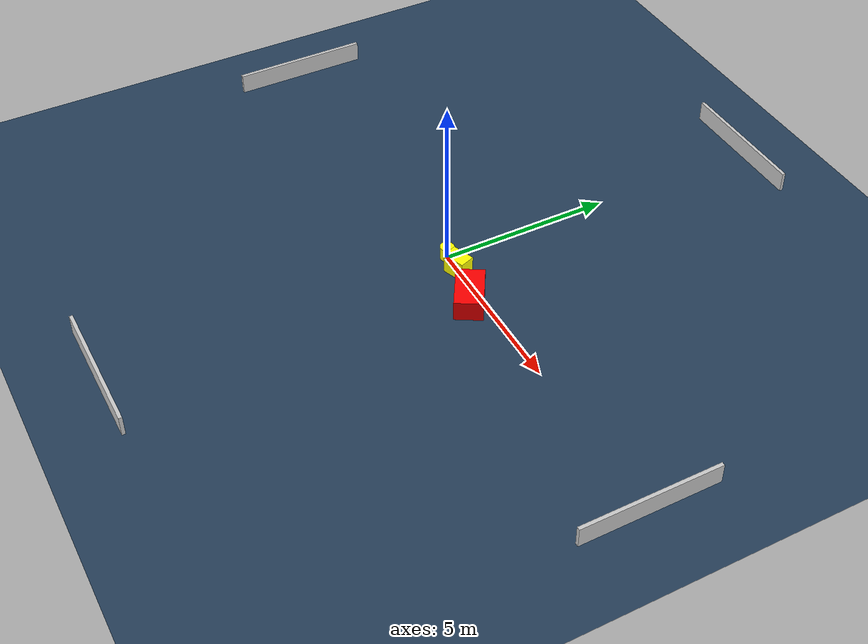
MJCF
<?xml version="1.0" ?>
<mujoco model="generated_environment">
  <option timestep="0.01" integrator="RK4" cone="elliptic"/>
  <default>
    <geom density="1"/>
  </default>
  <asset>
    <texture builtin="gradient" height="3072" name="skybox" rgb1="0.3 0.5 0.7" rgb2="0 0 0" type="skybox" width="512"/>
    <texture builtin="checker" height="300" name="groundplane" rgb1="0.2 0.3 0.4" rgb2="0.1 0.2 0.3" type="2d" width="300"/>
    <material name="groundplane" reflectance="0.2" texrepeat="5 5" texture="groundplane"/>
  </asset>
  <worldbody>
    <light dir="0 0 -1" directional="true" pos="0 0 1.5"/>
    <geom condim="3" friction="0.5 0.005 0.001" material="groundplane" name="floor" pos="0 0 0" size="0 0 0.05" type="plane"/>
    <body name="walls">
      <geom name="wall_1" condim="4" pos="-10.0 0.0 0.3" rgba="0.800000011920929 0.800000011920929 0.800000011920929 1.0" size="0.05 2.0 0.3" type="box"/>
      <geom name="wall_2" condim="4" pos="10.0 0.0 0.3" rgba="0.800000011920929 0.800000011920929 0.800000011920929 1.0" size="0.05 2.0 0.3" type="box"/>
      <geom name="wall_3" condim="4" pos="0.0 -10.0 0.3" rgba="0.800000011920929 0.800000011920929 0.800000011920929 1.0" size="2.0 0.05 0.3" type="box"/>
      <geom name="wall_4" condim="4" pos="0.0 10.0 0.3" rgba="0.800000011920929 0.800000011920929 0.800000011920929 1.0" size="2.0 0.05 0.3" type="box"/>
    </body>
    <body name="robot">
      <joint name="joint_x" type="slide" pos="0 0 0" axis="1 0 0"/>
      <joint name="joint_y" type="slide" pos="0 0 0" axis="0 1 0"/>
      <geom name="robot" type="cylinder" pos="0.0 0.0 0.2" size="0.2 0.2 0.0" mass="5.0" friction="1.0 0.005 0.0001" condim="4" rgba="1.0 1.0 0.0 1.0"/>
    </body>
    <body name="obstacle_1_movable">
      <geom name="obstacle_1_movable" condim="4" pos="0.685118923942223 -0.022452590273495294 0.3" euler="0 0 109.85890152106568" friction="0.0 0.005 0.001" rgba="1.0 1.0 0.0 1.0" size="0.21929579295708299 0.33460167034020605 0.3" type="box" mass="0.1"/>
      <joint type="free"/>
    </body>
    <body name="obstacle_2_static">
      <geom name="obstacle_2_static" condim="4" pos="1.8839804351494762 -0.32663601799326525 0.3" euler="0 0 329.16282977130123" friction="0.0 0.005 0.001" rgba="1.0 0.0 0.0 1.0" size="0.6703740004053604 0.40020348120063787 0.3" type="box"/>
    </body>
  </worldbody>
  <actuator>
    <motor name="actuator_x" joint="joint_x" gear="1" ctrlrange="-1 1"/>
    <motor name="actuator_y" joint="joint_y" gear="1" ctrlrange="-1 1"/>
  </actuator>
</mujoco>
